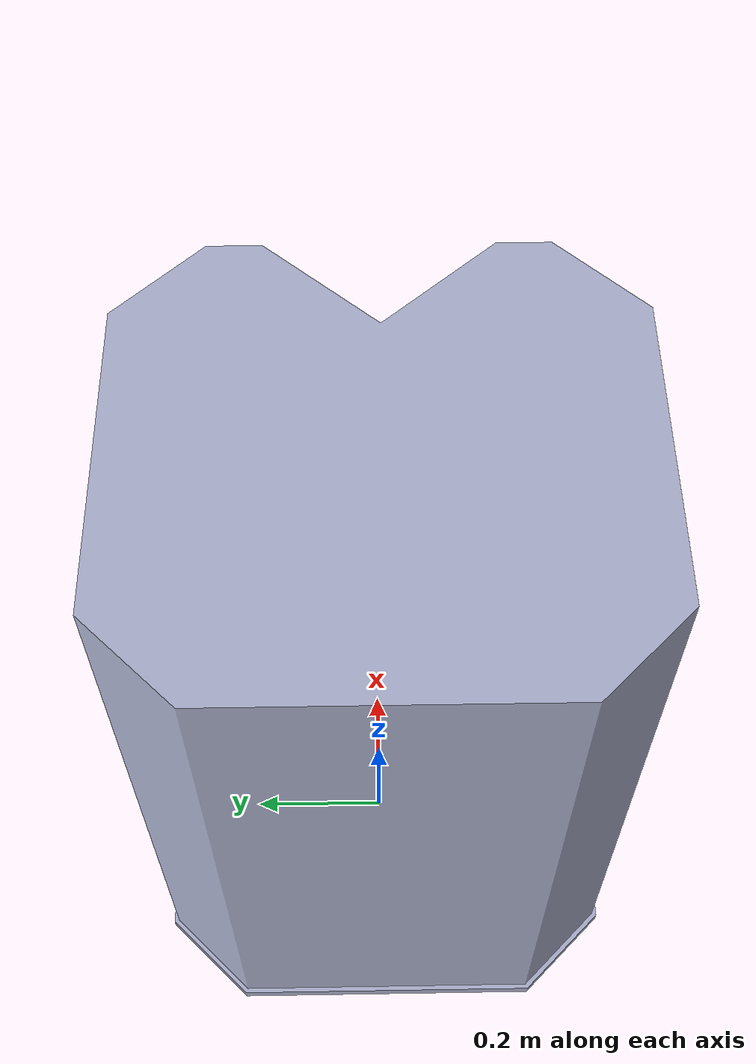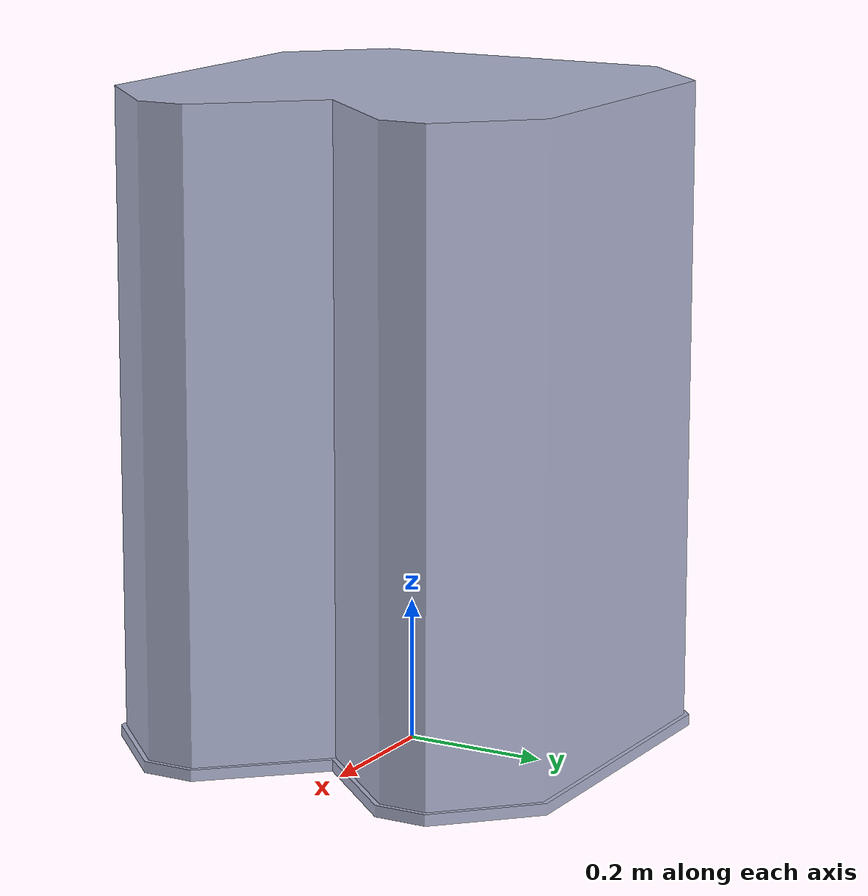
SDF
<?xml version="1.0" encoding="UTF-8"?>
<sdf version="1.11">
    <model name="nubot">
        <static>false</static>
        <link name="chassis">
            <pose>0 0 0.01 0 0 0</pose>

            <inertial>
                <mass>31</mass>
                <pose>0 0 0 0 0 0</pose>
                <inertia>
                    <ixx>100</ixx>
                    <ixy>0</ixy>
                    <ixz>0</ixz>
                    <iyy>100</iyy>
                    <iyz>0</iyz>
                    <izz>2.86</izz>
                </inertia>
            </inertial>

            <collision name="collision">
                <pose>0 0 0 0 0 0</pose>
                <geometry>
                    <mesh>
                        <scale>1.5 1.5 1.6</scale>
                        <uri>file://meshes/nubot_frame_collision.dae</uri>
                    </mesh>
                </geometry>
                <surface>
                    <bounce>
                        <restitution_coefficient>0</restitution_coefficient>
                    </bounce>
                    <friction>
                        <ode>
                            <mu>0.1</mu>
                            <mu2>0.1</mu2>
                        </ode>
                    </friction>
                </surface>
            </collision>

            <visual name="visual">
                <pose>0 0 0 0 0 0</pose>
                <geometry>
                    <mesh>
                        <scale>1.5 1.5 1.6</scale>
                        <uri>file://meshes/nubot_frame.dae</uri>
                    </mesh>
                </geometry>
            </visual>

            <linear_damping>0.0</linear_damping>
            <angular_damping>0.0</angular_damping>

            <self_collide>false</self_collide>
            <gravity>true</gravity>
        </link>

    </model>
</sdf>
